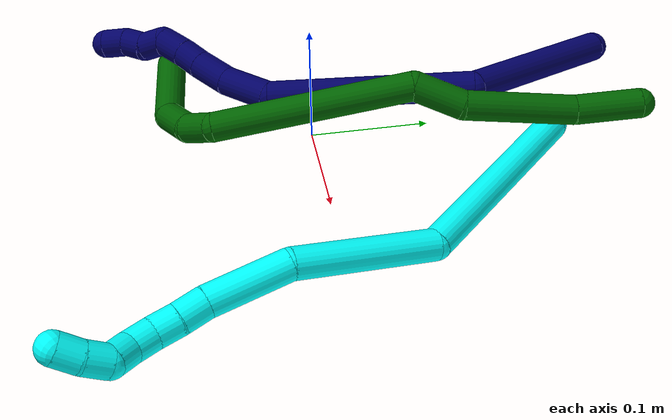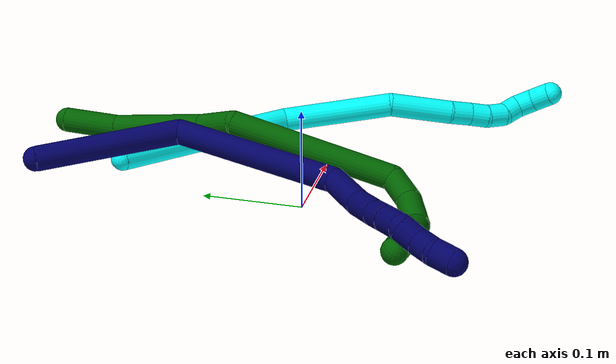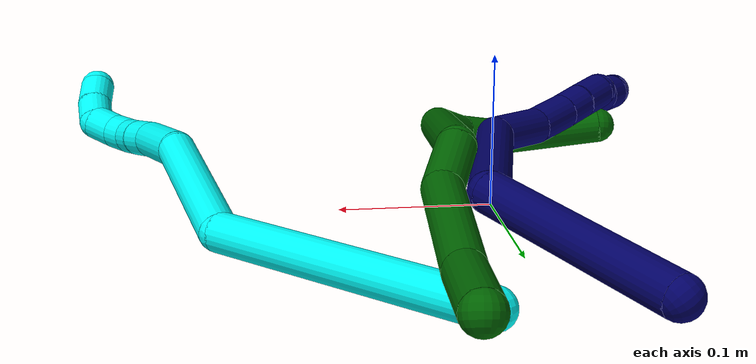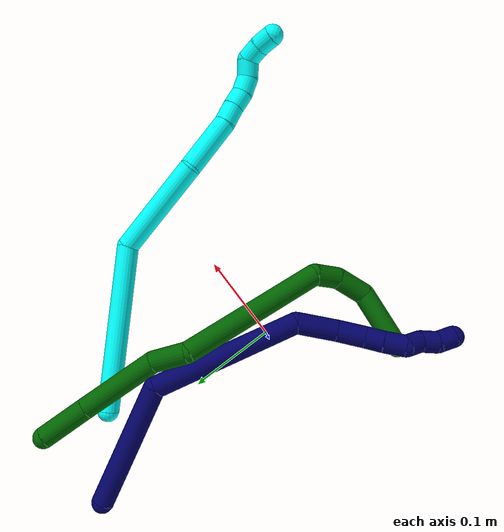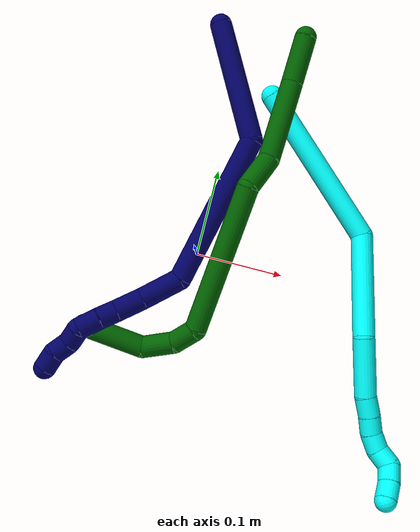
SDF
<sdf version="1.7">
 <world name="default">
  <model name="photoneo_s_sensor">
   <static>1</static>
   <pose>0 0 2 1.57079 1.57079 3.14159</pose>
   <link name="link">
    <inertial><mass>0.1</mass></inertial>
    <sensor name="sensor" type="depth">
     <update_rate>30</update_rate>
     <camera>
      <horizontal_fov>1.22</horizontal_fov>
      <image><width>1920</width><height>1200</height><format>B8G8R8</format></image>
      <clip><near>0.1</near><far>4</far></clip>
      <depth_camera><output>points</output></depth_camera>
     </camera>
     <plugin name="camera_plugin" filename="libgazebo_ros_depth_camera.so">
      <baseline>0.2</baseline>
      <alwaysOn>1</alwaysOn>
      <updateRate>0.0</updateRate>
      <cameraName>camera_ir</cameraName>
      <imageTopicName>/camera/color/image_raw</imageTopicName>
      <cameraInfoTopicName>/camera/color/camera_info</cameraInfoTopicName>
      <depthImageTopicName>/camera/depth/image_raw</depthImageTopicName>
      <depthImageCameraInfoTopicName>/camera/depth/camera_info</depthImageCameraInfoTopicName>
      <pointCloudTopicName>/camera/depth/points</pointCloudTopicName>
      <frameName>fr_optical</frameName>
      <pointCloudCutoff>0.1</pointCloudCutoff>
      <pointCloudCutoffMax>2.0</pointCloudCutoffMax>
      <distortionK1>0</distortionK1>
      <distortionK2>0</distortionK2>
      <distortionK3>0</distortionK3>
      <distortionT1>0</distortionT1>
      <distortionT2>0</distortionT2>
      <CxPrime>0</CxPrime>
      <Cx>0</Cx>
      <Cy>0</Cy>
      <focalLength>0</focalLength>
      <hackBaseline>0</hackBaseline>
     </plugin>
    </sensor>
   </link>
  </model>
  <model name="bin">
   <static>1</static>
   <link name="bottom">
    <collision name="collision-bottom">
     <pose>0 0 -0.01 0 -0 0</pose>
     <geometry><box><size>0.8 0.6 0.02</size></box></geometry>
     <surface>
      <friction><ode><mu>100</mu><mu2>100</mu2></ode></friction>
      <contact><collide_bitmask>65535</collide_bitmask></contact>
     </surface>
    </collision>
   </link>
   <link name="west_wall">
    <collision name="collision-west_wall">
     <pose>-0.41 0 0.1 0 -0 0</pose>
     <geometry><box><size>0.02 0.6 0.2</size></box></geometry>
     <surface>
      <friction><ode><mu>100</mu><mu2>100</mu2></ode></friction>
      <contact><collide_bitmask>65535</collide_bitmask></contact>
     </surface>
    </collision>
   </link>
   <link name="east_wall">
    <collision name="collision-east_wall">
     <pose>0.41 0 0.1 0 -0 0</pose>
     <geometry><box><size>0.02 0.6 0.2</size></box></geometry>
     <surface>
      <friction><ode><mu>100</mu><mu2>100</mu2></ode></friction>
      <contact><collide_bitmask>65535</collide_bitmask></contact>
     </surface>
    </collision>
   </link>
   <link name="south_wall">
    <collision name="collision-south_wall">
     <pose>0 -0.31 0.1 0 -0 0</pose>
     <geometry><box><size>0.8 0.02 0.2</size></box></geometry>
     <surface>
      <friction><ode><mu>100</mu><mu2>100</mu2></ode></friction>
      <contact><collide_bitmask>65535</collide_bitmask></contact>
     </surface>
    </collision>
   </link>
   <link name="north_wall">
    <collision name="collision-north_wall">
     <pose>0 0.31 0.1 0 -0 0</pose>
     <geometry><box><size>0.8 0.02 0.2</size></box></geometry>
     <surface>
      <friction><ode><mu>100</mu><mu2>100</mu2></ode></friction>
      <contact><collide_bitmask>65535</collide_bitmask></contact>
     </surface>
    </collision>
   </link>
  </model>
  <model name="3">
   <static>0</static>
   <link name="3">
    <collision name="collision-cylinder-e_1_1_4">
     <pose>0.050797 -0.078944 0.021488 1.30505 0.555623 0.429165</pose>
     <geometry><cylinder><radius>0.0125</radius><length>0.192606</length></cylinder></geometry>
     <surface>
      <friction><ode><mu>1.16</mu><mu2>1.16</mu2><slip1>0</slip1><slip2>0</slip2></ode></friction>
      <contact><ode><kp>1e+06</kp><kd>1</kd><max_vel>0</max_vel><min_depth>0.001</min_depth></ode></contact>
     </surface>
    </collision>
    <visual name="visual-cylinder-e_1_1_4">
     <pose>0.050797 -0.078944 0.021488 1.30505 0.555623 0.429165</pose>
     <geometry><cylinder><radius>0.0125</radius><length>0.192606</length></cylinder></geometry>
     <material><ambient>0.003922 1 0.996078 1</ambient></material>
    </visual>
    <collision name="collision-cylinder-e_2_4_5">
     <pose>0.123667 -0.208193 0.02252 1.957 0.386064 0.565416</pose>
     <geometry><cylinder><radius>0.0125</radius><length>0.117237</length></cylinder></geometry>
     <surface>
      <friction><ode><mu>1.16</mu><mu2>1.16</mu2><slip1>0</slip1><slip2>0</slip2></ode></friction>
      <contact><ode><kp>1e+06</kp><kd>1</kd><max_vel>0</max_vel><min_depth>0.001</min_depth></ode></contact>
     </surface>
    </collision>
    <visual name="visual-cylinder-e_2_4_5">
     <pose>0.123667 -0.208193 0.02252 1.957 0.386064 0.565416</pose>
     <geometry><cylinder><radius>0.0125</radius><length>0.117237</length></cylinder></geometry>
     <material><ambient>0.003922 1 0.996078 1</ambient></material>
    </visual>
    <collision name="collision-cylinder-e_3_5_6">
     <pose>0.167306 -0.281887 -0.007266 1.9504 0.708206 0.998777</pose>
     <geometry><cylinder><radius>0.0125</radius><length>0.066311</length></cylinder></geometry>
     <surface>
      <friction><ode><mu>1.16</mu><mu2>1.16</mu2><slip1>0</slip1><slip2>0</slip2></ode></friction>
      <contact><ode><kp>1e+06</kp><kd>1</kd><max_vel>0</max_vel><min_depth>0.001</min_depth></ode></contact>
     </surface>
    </collision>
    <visual name="visual-cylinder-e_3_5_6">
     <pose>0.167306 -0.281887 -0.007266 1.9504 0.708206 0.998777</pose>
     <geometry><cylinder><radius>0.0125</radius><length>0.066311</length></cylinder></geometry>
     <material><ambient>0.003922 1 0.996078 1</ambient></material>
    </visual>
    <collision name="collision-cylinder-e_4_6_7">
     <pose>0.196626 -0.313399 -0.017892 1.72878 0.755902 0.871005</pose>
     <geometry><cylinder><radius>0.0125</radius><length>0.022605</length></cylinder></geometry>
     <surface>
      <friction><ode><mu>1.16</mu><mu2>1.16</mu2><slip1>0</slip1><slip2>0</slip2></ode></friction>
      <contact><ode><kp>1e+06</kp><kd>1</kd><max_vel>0</max_vel><min_depth>0.001</min_depth></ode></contact>
     </surface>
    </collision>
    <visual name="visual-cylinder-e_4_6_7">
     <pose>0.196626 -0.313399 -0.017892 1.72878 0.755902 0.871005</pose>
     <geometry><cylinder><radius>0.0125</radius><length>0.022605</length></cylinder></geometry>
     <material><ambient>0.003922 1 0.996078 1</ambient></material>
    </visual>
    <collision name="collision-cylinder-e_5_7_8">
     <pose>0.211247 -0.328614 -0.021206 1.8482 0.749796 0.960928</pose>
     <geometry><cylinder><radius>0.0125</radius><length>0.020156</length></cylinder></geometry>
     <surface>
      <friction><ode><mu>1.16</mu><mu2>1.16</mu2><slip1>0</slip1><slip2>0</slip2></ode></friction>
      <contact><ode><kp>1e+06</kp><kd>1</kd><max_vel>0</max_vel><min_depth>0.001</min_depth></ode></contact>
     </surface>
    </collision>
    <visual name="visual-cylinder-e_5_7_8">
     <pose>0.211247 -0.328614 -0.021206 1.8482 0.749796 0.960928</pose>
     <geometry><cylinder><radius>0.0125</radius><length>0.020156</length></cylinder></geometry>
     <material><ambient>0.003922 1 0.996078 1</ambient></material>
    </visual>
    <collision name="collision-cylinder-e_6_8_9">
     <pose>0.223936 -0.344026 -0.023148 1.56154 0.610524 0.605237</pose>
     <geometry><cylinder><radius>0.0125</radius><length>0.020306</length></cylinder></geometry>
     <surface>
      <friction><ode><mu>1.16</mu><mu2>1.16</mu2><slip1>0</slip1><slip2>0</slip2></ode></friction>
      <contact><ode><kp>1e+06</kp><kd>1</kd><max_vel>0</max_vel><min_depth>0.001</min_depth></ode></contact>
     </surface>
    </collision>
    <visual name="visual-cylinder-e_6_8_9">
     <pose>0.223936 -0.344026 -0.023148 1.56154 0.610524 0.605237</pose>
     <geometry><cylinder><radius>0.0125</radius><length>0.020306</length></cylinder></geometry>
     <material><ambient>0.003922 1 0.996078 1</ambient></material>
    </visual>
    <collision name="collision-cylinder-e_7_9_10">
     <pose>0.23305 -0.361616 -0.020026 1.25348 0.325515 0.236707</pose>
     <geometry><cylinder><radius>0.0125</radius><length>0.020598</length></cylinder></geometry>
     <surface>
      <friction><ode><mu>1.16</mu><mu2>1.16</mu2><slip1>0</slip1><slip2>0</slip2></ode></friction>
      <contact><ode><kp>1e+06</kp><kd>1</kd><max_vel>0</max_vel><min_depth>0.001</min_depth></ode></contact>
     </surface>
    </collision>
    <visual name="visual-cylinder-e_7_9_10">
     <pose>0.23305 -0.361616 -0.020026 1.25348 0.325515 0.236707</pose>
     <geometry><cylinder><radius>0.0125</radius><length>0.020598</length></cylinder></geometry>
     <material><ambient>0.003922 1 0.996078 1</ambient></material>
    </visual>
    <collision name="collision-cylinder-e_8_10_11">
     <pose>0.237053 -0.379955 -0.02116 2.00255 0.070954 0.110748</pose>
     <geometry><cylinder><radius>0.0125</radius><length>0.020019</length></cylinder></geometry>
     <surface>
      <friction><ode><mu>1.16</mu><mu2>1.16</mu2><slip1>0</slip1><slip2>0</slip2></ode></friction>
      <contact><ode><kp>1e+06</kp><kd>1</kd><max_vel>0</max_vel><min_depth>0.001</min_depth></ode></contact>
     </surface>
    </collision>
    <visual name="visual-cylinder-e_8_10_11">
     <pose>0.237053 -0.379955 -0.02116 2.00255 0.070954 0.110748</pose>
     <geometry><cylinder><radius>0.0125</radius><length>0.020019</length></cylinder></geometry>
     <material><ambient>0.003922 1 0.996078 1</ambient></material>
    </visual>
    <collision name="collision-cylinder-e_9_11_2">
     <pose>0.237528 -0.397389 -0.030958 2.16236 -0.023285 -0.043691</pose>
     <geometry><cylinder><radius>0.0125</radius><length>0.020161</length></cylinder></geometry>
     <surface>
      <friction><ode><mu>1.16</mu><mu2>1.16</mu2><slip1>0</slip1><slip2>0</slip2></ode></friction>
      <contact><ode><kp>1e+06</kp><kd>1</kd><max_vel>0</max_vel><min_depth>0.001</min_depth></ode></contact>
     </surface>
    </collision>
    <visual name="visual-cylinder-e_9_11_2">
     <pose>0.237528 -0.397389 -0.030958 2.16236 -0.023285 -0.043691</pose>
     <geometry><cylinder><radius>0.0125</radius><length>0.020161</length></cylinder></geometry>
     <material><ambient>0.003922 1 0.996078 1</ambient></material>
    </visual>
    <collision name="collision-sphere-2">
     <pose>0.237294 -0.405754 -0.036578 0 -0 0</pose>
     <geometry><sphere><radius>0.0125</radius></sphere></geometry>
     <surface>
      <friction><ode><mu>1.16</mu><mu2>1.16</mu2><slip1>0</slip1><slip2>0</slip2></ode></friction>
      <contact><ode><kp>1e+06</kp><kd>1</kd><max_vel>0</max_vel><min_depth>0.001</min_depth></ode></contact>
     </surface>
    </collision>
    <visual name="visual-sphere-2">
     <pose>0.237294 -0.405754 -0.036578 0 -0 0</pose>
     <geometry><sphere><radius>0.0125</radius></sphere></geometry>
     <material><ambient>0.003922 1 0.996078 1</ambient></material>
    </visual>
    <collision name="collision-sphere-11">
     <pose>0.237763 -0.389023 -0.025338 0 -0 0</pose>
     <geometry><sphere><radius>0.0125</radius></sphere></geometry>
     <surface>
      <friction><ode><mu>1.16</mu><mu2>1.16</mu2><slip1>0</slip1><slip2>0</slip2></ode></friction>
      <contact><ode><kp>1e+06</kp><kd>1</kd><max_vel>0</max_vel><min_depth>0.001</min_depth></ode></contact>
     </surface>
    </collision>
    <visual name="visual-sphere-11">
     <pose>0.237763 -0.389023 -0.025338 0 -0 0</pose>
     <geometry><sphere><radius>0.0125</radius></sphere></geometry>
     <material><ambient>0.003922 1 0.996078 1</ambient></material>
    </visual>
    <collision name="collision-sphere-10">
     <pose>0.236344 -0.370887 -0.016982 0 -0 0</pose>
     <geometry><sphere><radius>0.0125</radius></sphere></geometry>
     <surface>
      <friction><ode><mu>1.16</mu><mu2>1.16</mu2><slip1>0</slip1><slip2>0</slip2></ode></friction>
      <contact><ode><kp>1e+06</kp><kd>1</kd><max_vel>0</max_vel><min_depth>0.001</min_depth></ode></contact>
     </surface>
    </collision>
    <visual name="visual-sphere-10">
     <pose>0.236344 -0.370887 -0.016982 0 -0 0</pose>
     <geometry><sphere><radius>0.0125</radius></sphere></geometry>
     <material><ambient>0.003922 1 0.996078 1</ambient></material>
    </visual>
    <collision name="collision-sphere-9">
     <pose>0.229756 -0.352345 -0.023071 0 -0 0</pose>
     <geometry><sphere><radius>0.0125</radius></sphere></geometry>
     <surface>
      <friction><ode><mu>1.16</mu><mu2>1.16</mu2><slip1>0</slip1><slip2>0</slip2></ode></friction>
      <contact><ode><kp>1e+06</kp><kd>1</kd><max_vel>0</max_vel><min_depth>0.001</min_depth></ode></contact>
     </surface>
    </collision>
    <visual name="visual-sphere-9">
     <pose>0.229756 -0.352345 -0.023071 0 -0 0</pose>
     <geometry><sphere><radius>0.0125</radius></sphere></geometry>
     <material><ambient>0.003922 1 0.996078 1</ambient></material>
    </visual>
    <collision name="collision-sphere-4">
     <pose>0.101595 -0.157889 0.042975 0 -0 0</pose>
     <geometry><sphere><radius>0.0125</radius></sphere></geometry>
     <surface>
      <friction><ode><mu>1.16</mu><mu2>1.16</mu2><slip1>0</slip1><slip2>0</slip2></ode></friction>
      <contact><ode><kp>1e+06</kp><kd>1</kd><max_vel>0</max_vel><min_depth>0.001</min_depth></ode></contact>
     </surface>
    </collision>
    <visual name="visual-sphere-4">
     <pose>0.101595 -0.157889 0.042975 0 -0 0</pose>
     <geometry><sphere><radius>0.0125</radius></sphere></geometry>
     <material><ambient>0.003922 1 0.996078 1</ambient></material>
    </visual>
    <collision name="collision-sphere-1">
     <geometry><sphere><radius>0.0125</radius></sphere></geometry>
     <surface>
      <friction><ode><mu>1.16</mu><mu2>1.16</mu2><slip1>0</slip1><slip2>0</slip2></ode></friction>
      <contact><ode><kp>1e+06</kp><kd>1</kd><max_vel>0</max_vel><min_depth>0.001</min_depth></ode></contact>
     </surface>
    </collision>
    <visual name="visual-sphere-1">
     <geometry><sphere><radius>0.0125</radius></sphere></geometry>
     <material><ambient>0.003922 1 0.996078 1</ambient></material>
    </visual>
    <collision name="collision-sphere-8">
     <pose>0.218115 -0.335708 -0.023225 0 -0 0</pose>
     <geometry><sphere><radius>0.0125</radius></sphere></geometry>
     <surface>
      <friction><ode><mu>1.16</mu><mu2>1.16</mu2><slip1>0</slip1><slip2>0</slip2></ode></friction>
      <contact><ode><kp>1e+06</kp><kd>1</kd><max_vel>0</max_vel><min_depth>0.001</min_depth></ode></contact>
     </surface>
    </collision>
    <visual name="visual-sphere-8">
     <pose>0.218115 -0.335708 -0.023225 0 -0 0</pose>
     <geometry><sphere><radius>0.0125</radius></sphere></geometry>
     <material><ambient>0.003922 1 0.996078 1</ambient></material>
    </visual>
    <collision name="collision-sphere-5">
     <pose>0.14574 -0.258498 0.002065 0 -0 0</pose>
     <geometry><sphere><radius>0.0125</radius></sphere></geometry>
     <surface>
      <friction><ode><mu>1.16</mu><mu2>1.16</mu2><slip1>0</slip1><slip2>0</slip2></ode></friction>
      <contact><ode><kp>1e+06</kp><kd>1</kd><max_vel>0</max_vel><min_depth>0.001</min_depth></ode></contact>
     </surface>
    </collision>
    <visual name="visual-sphere-5">
     <pose>0.14574 -0.258498 0.002065 0 -0 0</pose>
     <geometry><sphere><radius>0.0125</radius></sphere></geometry>
     <material><ambient>0.003922 1 0.996078 1</ambient></material>
    </visual>
    <collision name="collision-sphere-6">
     <pose>0.188873 -0.305277 -0.016598 0 -0 0</pose>
     <geometry><sphere><radius>0.0125</radius></sphere></geometry>
     <surface>
      <friction><ode><mu>1.16</mu><mu2>1.16</mu2><slip1>0</slip1><slip2>0</slip2></ode></friction>
      <contact><ode><kp>1e+06</kp><kd>1</kd><max_vel>0</max_vel><min_depth>0.001</min_depth></ode></contact>
     </surface>
    </collision>
    <visual name="visual-sphere-6">
     <pose>0.188873 -0.305277 -0.016598 0 -0 0</pose>
     <geometry><sphere><radius>0.0125</radius></sphere></geometry>
     <material><ambient>0.003922 1 0.996078 1</ambient></material>
    </visual>
    <collision name="collision-sphere-7">
     <pose>0.204379 -0.321521 -0.019186 0 -0 0</pose>
     <geometry><sphere><radius>0.0125</radius></sphere></geometry>
     <surface>
      <friction><ode><mu>1.16</mu><mu2>1.16</mu2><slip1>0</slip1><slip2>0</slip2></ode></friction>
      <contact><ode><kp>1e+06</kp><kd>1</kd><max_vel>0</max_vel><min_depth>0.001</min_depth></ode></contact>
     </surface>
    </collision>
    <visual name="visual-sphere-7">
     <pose>0.204379 -0.321521 -0.019186 0 -0 0</pose>
     <geometry><sphere><radius>0.0125</radius></sphere></geometry>
     <material><ambient>0.003922 1 0.996078 1</ambient></material>
    </visual>
    <inertial>
     <pose>0.125923 -0.204132 0.00707 0 -0 0</pose>
     <mass>0.5</mass>
     <inertia>
      <ixx>0.000913</ixx>
      <ixy>0</ixy>
      <ixz>0</ixz>
      <iyy>0.000533</iyy>
      <iyz>0</iyz>
      <izz>0.000246</izz>
     </inertia>
    </inertial>
   </link>
   <pose>0.039183 0.199806 0.011492 -1.62431 0.991654 -1.03307</pose>
  </model>
  <model name="6">
   <static>0</static>
   <link name="6">
    <collision name="collision-cylinder-e_1_1_4">
     <pose>0.003403 -0.025412 0.011571 1.14352 0.12128 0.078095</pose>
     <geometry><cylinder><radius>0.0125</radius><length>0.056259</length></cylinder></geometry>
     <surface>
      <friction><ode><mu>1.16</mu><mu2>1.16</mu2><slip1>0</slip1><slip2>0</slip2></ode></friction>
      <contact><ode><kp>1e+06</kp><kd>1</kd><max_vel>0</max_vel><min_depth>0.001</min_depth></ode></contact>
     </surface>
    </collision>
    <visual name="visual-cylinder-e_1_1_4">
     <pose>0.003403 -0.025412 0.011571 1.14352 0.12128 0.078095</pose>
     <geometry><cylinder><radius>0.0125</radius><length>0.056259</length></cylinder></geometry>
     <material><ambient>0 0.392157 0.003922 1</ambient></material>
    </visual>
    <collision name="collision-cylinder-e_2_4_5">
     <pose>0.011837 -0.089848 0.049311 0.980064 0.106655 0.056931</pose>
     <geometry><cylinder><radius>0.0125</radius><length>0.094507</length></cylinder></geometry>
     <surface>
      <friction><ode><mu>1.16</mu><mu2>1.16</mu2><slip1>0</slip1><slip2>0</slip2></ode></friction>
      <contact><ode><kp>1e+06</kp><kd>1</kd><max_vel>0</max_vel><min_depth>0.001</min_depth></ode></contact>
     </surface>
    </collision>
    <visual name="visual-cylinder-e_2_4_5">
     <pose>0.011837 -0.089848 0.049311 0.980064 0.106655 0.056931</pose>
     <geometry><cylinder><radius>0.0125</radius><length>0.094507</length></cylinder></geometry>
     <material><ambient>0 0.392157 0.003922 1</ambient></material>
    </visual>
    <collision name="collision-cylinder-e_3_5_6">
     <pose>0.012473 -0.143891 0.090271 0.793117 -0.205476 -0.086292</pose>
     <geometry><cylinder><radius>0.0125</radius><length>0.043068</length></cylinder></geometry>
     <surface>
      <friction><ode><mu>1.16</mu><mu2>1.16</mu2><slip1>0</slip1><slip2>0</slip2></ode></friction>
      <contact><ode><kp>1e+06</kp><kd>1</kd><max_vel>0</max_vel><min_depth>0.001</min_depth></ode></contact>
     </surface>
    </collision>
    <visual name="visual-cylinder-e_3_5_6">
     <pose>0.012473 -0.143891 0.090271 0.793117 -0.205476 -0.086292</pose>
     <geometry><cylinder><radius>0.0125</radius><length>0.043068</length></cylinder></geometry>
     <material><ambient>0 0.392157 0.003922 1</ambient></material>
    </visual>
    <collision name="collision-cylinder-e_4_6_7">
     <pose>0.012872 -0.239995 0.126709 1.30991 0.057049 0.043821</pose>
     <geometry><cylinder><radius>0.0125</radius><length>0.168118</length></cylinder></geometry>
     <surface>
      <friction><ode><mu>1.16</mu><mu2>1.16</mu2><slip1>0</slip1><slip2>0</slip2></ode></friction>
      <contact><ode><kp>1e+06</kp><kd>1</kd><max_vel>0</max_vel><min_depth>0.001</min_depth></ode></contact>
     </surface>
    </collision>
    <visual name="visual-cylinder-e_4_6_7">
     <pose>0.012872 -0.239995 0.126709 1.30991 0.057049 0.043821</pose>
     <geometry><cylinder><radius>0.0125</radius><length>0.168118</length></cylinder></geometry>
     <material><ambient>0 0.392157 0.003922 1</ambient></material>
    </visual>
    <collision name="collision-cylinder-e_5_7_8">
     <pose>0.009664 -0.333785 0.147817 1.6132 -0.561489 -0.584481</pose>
     <geometry><cylinder><radius>0.0125</radius><length>0.030053</length></cylinder></geometry>
     <surface>
      <friction><ode><mu>1.16</mu><mu2>1.16</mu2><slip1>0</slip1><slip2>0</slip2></ode></friction>
      <contact><ode><kp>1e+06</kp><kd>1</kd><max_vel>0</max_vel><min_depth>0.001</min_depth></ode></contact>
     </surface>
    </collision>
    <visual name="visual-cylinder-e_5_7_8">
     <pose>0.009664 -0.333785 0.147817 1.6132 -0.561489 -0.584481</pose>
     <geometry><cylinder><radius>0.0125</radius><length>0.030053</length></cylinder></geometry>
     <material><ambient>0 0.392157 0.003922 1</ambient></material>
    </visual>
    <collision name="collision-cylinder-e_6_8_9">
     <pose>-0.013908 -0.357176 0.147285 1.57015 -0.969496 -0.968965</pose>
     <geometry><cylinder><radius>0.0125</radius><length>0.037768</length></cylinder></geometry>
     <surface>
      <friction><ode><mu>1.16</mu><mu2>1.16</mu2><slip1>0</slip1><slip2>0</slip2></ode></friction>
      <contact><ode><kp>1e+06</kp><kd>1</kd><max_vel>0</max_vel><min_depth>0.001</min_depth></ode></contact>
     </surface>
    </collision>
    <visual name="visual-cylinder-e_6_8_9">
     <pose>-0.013908 -0.357176 0.147285 1.57015 -0.969496 -0.968965</pose>
     <geometry><cylinder><radius>0.0125</radius><length>0.037768</length></cylinder></geometry>
     <material><ambient>0 0.392157 0.003922 1</ambient></material>
    </visual>
    <collision name="collision-cylinder-e_7_9_2">
     <pose>-0.064374 -0.36792 0.151209 0.015481 -1.459 -0.013841</pose>
     <geometry><cylinder><radius>0.0125</radius><length>0.070227</length></cylinder></geometry>
     <surface>
      <friction><ode><mu>1.16</mu><mu2>1.16</mu2><slip1>0</slip1><slip2>0</slip2></ode></friction>
      <contact><ode><kp>1e+06</kp><kd>1</kd><max_vel>0</max_vel><min_depth>0.001</min_depth></ode></contact>
     </surface>
    </collision>
    <visual name="visual-cylinder-e_7_9_2">
     <pose>-0.064374 -0.36792 0.151209 0.015481 -1.459 -0.013841</pose>
     <geometry><cylinder><radius>0.0125</radius><length>0.070227</length></cylinder></geometry>
     <material><ambient>0 0.392157 0.003922 1</ambient></material>
    </visual>
    <collision name="collision-sphere-2">
     <pose>-0.099269 -0.36798 0.155126 0 -0 0</pose>
     <geometry><sphere><radius>0.0125</radius></sphere></geometry>
     <surface>
      <friction><ode><mu>1.16</mu><mu2>1.16</mu2><slip1>0</slip1><slip2>0</slip2></ode></friction>
      <contact><ode><kp>1e+06</kp><kd>1</kd><max_vel>0</max_vel><min_depth>0.001</min_depth></ode></contact>
     </surface>
    </collision>
    <visual name="visual-sphere-2">
     <pose>-0.099269 -0.36798 0.155126 0 -0 0</pose>
     <geometry><sphere><radius>0.0125</radius></sphere></geometry>
     <material><ambient>0 0.392157 0.003922 1</ambient></material>
    </visual>
    <collision name="collision-sphere-9">
     <pose>-0.02948 -0.367859 0.147292 0 -0 0</pose>
     <geometry><sphere><radius>0.0125</radius></sphere></geometry>
     <surface>
      <friction><ode><mu>1.16</mu><mu2>1.16</mu2><slip1>0</slip1><slip2>0</slip2></ode></friction>
      <contact><ode><kp>1e+06</kp><kd>1</kd><max_vel>0</max_vel><min_depth>0.001</min_depth></ode></contact>
     </surface>
    </collision>
    <visual name="visual-sphere-9">
     <pose>-0.02948 -0.367859 0.147292 0 -0 0</pose>
     <geometry><sphere><radius>0.0125</radius></sphere></geometry>
     <material><ambient>0 0.392157 0.003922 1</ambient></material>
    </visual>
    <collision name="collision-sphere-4">
     <pose>0.006806 -0.050825 0.023142 0 -0 0</pose>
     <geometry><sphere><radius>0.0125</radius></sphere></geometry>
     <surface>
      <friction><ode><mu>1.16</mu><mu2>1.16</mu2><slip1>0</slip1><slip2>0</slip2></ode></friction>
      <contact><ode><kp>1e+06</kp><kd>1</kd><max_vel>0</max_vel><min_depth>0.001</min_depth></ode></contact>
     </surface>
    </collision>
    <visual name="visual-sphere-4">
     <pose>0.006806 -0.050825 0.023142 0 -0 0</pose>
     <geometry><sphere><radius>0.0125</radius></sphere></geometry>
     <material><ambient>0 0.392157 0.003922 1</ambient></material>
    </visual>
    <collision name="collision-sphere-1">
     <geometry><sphere><radius>0.0125</radius></sphere></geometry>
     <surface>
      <friction><ode><mu>1.16</mu><mu2>1.16</mu2><slip1>0</slip1><slip2>0</slip2></ode></friction>
      <contact><ode><kp>1e+06</kp><kd>1</kd><max_vel>0</max_vel><min_depth>0.001</min_depth></ode></contact>
     </surface>
    </collision>
    <visual name="visual-sphere-1">
     <geometry><sphere><radius>0.0125</radius></sphere></geometry>
     <material><ambient>0 0.392157 0.003922 1</ambient></material>
    </visual>
    <collision name="collision-sphere-8">
     <pose>0.001664 -0.346493 0.147278 0 -0 0</pose>
     <geometry><sphere><radius>0.0125</radius></sphere></geometry>
     <surface>
      <friction><ode><mu>1.16</mu><mu2>1.16</mu2><slip1>0</slip1><slip2>0</slip2></ode></friction>
      <contact><ode><kp>1e+06</kp><kd>1</kd><max_vel>0</max_vel><min_depth>0.001</min_depth></ode></contact>
     </surface>
    </collision>
    <visual name="visual-sphere-8">
     <pose>0.001664 -0.346493 0.147278 0 -0 0</pose>
     <geometry><sphere><radius>0.0125</radius></sphere></geometry>
     <material><ambient>0 0.392157 0.003922 1</ambient></material>
    </visual>
    <collision name="collision-sphere-5">
     <pose>0.016867 -0.12887 0.07548 0 -0 0</pose>
     <geometry><sphere><radius>0.0125</radius></sphere></geometry>
     <surface>
      <friction><ode><mu>1.16</mu><mu2>1.16</mu2><slip1>0</slip1><slip2>0</slip2></ode></friction>
      <contact><ode><kp>1e+06</kp><kd>1</kd><max_vel>0</max_vel><min_depth>0.001</min_depth></ode></contact>
     </surface>
    </collision>
    <visual name="visual-sphere-5">
     <pose>0.016867 -0.12887 0.07548 0 -0 0</pose>
     <geometry><sphere><radius>0.0125</radius></sphere></geometry>
     <material><ambient>0 0.392157 0.003922 1</ambient></material>
    </visual>
    <collision name="collision-sphere-6">
     <pose>0.00808 -0.158912 0.105062 0 -0 0</pose>
     <geometry><sphere><radius>0.0125</radius></sphere></geometry>
     <surface>
      <friction><ode><mu>1.16</mu><mu2>1.16</mu2><slip1>0</slip1><slip2>0</slip2></ode></friction>
      <contact><ode><kp>1e+06</kp><kd>1</kd><max_vel>0</max_vel><min_depth>0.001</min_depth></ode></contact>
     </surface>
    </collision>
    <visual name="visual-sphere-6">
     <pose>0.00808 -0.158912 0.105062 0 -0 0</pose>
     <geometry><sphere><radius>0.0125</radius></sphere></geometry>
     <material><ambient>0 0.392157 0.003922 1</ambient></material>
    </visual>
    <collision name="collision-sphere-7">
     <pose>0.017665 -0.321077 0.148356 0 -0 0</pose>
     <geometry><sphere><radius>0.0125</radius></sphere></geometry>
     <surface>
      <friction><ode><mu>1.16</mu><mu2>1.16</mu2><slip1>0</slip1><slip2>0</slip2></ode></friction>
      <contact><ode><kp>1e+06</kp><kd>1</kd><max_vel>0</max_vel><min_depth>0.001</min_depth></ode></contact>
     </surface>
    </collision>
    <visual name="visual-sphere-7">
     <pose>0.017665 -0.321077 0.148356 0 -0 0</pose>
     <geometry><sphere><radius>0.0125</radius></sphere></geometry>
     <material><ambient>0 0.392157 0.003922 1</ambient></material>
    </visual>
    <inertial>
     <pose>-0.001489 -0.211649 0.10225 0 -0 0</pose>
     <mass>0.5</mass>
     <inertia>
      <ixx>0.000518</ixx>
      <ixy>0</ixy>
      <ixz>0</ixz>
      <iyy>0.000185</iyy>
      <iyz>0</iyz>
      <izz>0.000496</izz>
     </inertia>
    </inertial>
   </link>
   <pose>0.059634 0.267495 0.039012 0.450877 0.031273 -0.158706</pose>
  </model>
  <model name="7">
   <static>0</static>
   <link name="7">
    <collision name="collision-cylinder-e_1_1_4">
     <pose>0.039368 -0.057898 -0.012283 1.77985 0.586954 0.714108</pose>
     <geometry><cylinder><radius>0.0125</radius><length>0.142167</length></cylinder></geometry>
     <surface>
      <friction><ode><mu>1.16</mu><mu2>1.16</mu2><slip1>0</slip1><slip2>0</slip2></ode></friction>
      <contact><ode><kp>1e+06</kp><kd>1</kd><max_vel>0</max_vel><min_depth>0.001</min_depth></ode></contact>
     </surface>
    </collision>
    <visual name="visual-cylinder-e_1_1_4">
     <pose>0.039368 -0.057898 -0.012283 1.77985 0.586954 0.714108</pose>
     <geometry><cylinder><radius>0.0125</radius><length>0.142167</length></cylinder></geometry>
     <material><ambient>0.003922 0 0.403922 1</ambient></material>
    </visual>
    <collision name="collision-cylinder-e_2_4_5">
     <pose>0.081486 -0.197735 0.002521 1.25152 0.03185 0.023017</pose>
     <geometry><cylinder><radius>0.0125</radius><length>0.172689</length></cylinder></geometry>
     <surface>
      <friction><ode><mu>1.16</mu><mu2>1.16</mu2><slip1>0</slip1><slip2>0</slip2></ode></friction>
      <contact><ode><kp>1e+06</kp><kd>1</kd><max_vel>0</max_vel><min_depth>0.001</min_depth></ode></contact>
     </surface>
    </collision>
    <visual name="visual-cylinder-e_2_4_5">
     <pose>0.081486 -0.197735 0.002521 1.25152 0.03185 0.023017</pose>
     <geometry><cylinder><radius>0.0125</radius><length>0.172689</length></cylinder></geometry>
     <material><ambient>0.003922 0 0.403922 1</ambient></material>
    </visual>
    <collision name="collision-cylinder-e_3_5_6">
     <pose>0.076672 -0.294867 0.046044 0.746146 -0.325876 -0.128512</pose>
     <geometry><cylinder><radius>0.0125</radius><length>0.04725</length></cylinder></geometry>
     <surface>
      <friction><ode><mu>1.16</mu><mu2>1.16</mu2><slip1>0</slip1><slip2>0</slip2></ode></friction>
      <contact><ode><kp>1e+06</kp><kd>1</kd><max_vel>0</max_vel><min_depth>0.001</min_depth></ode></contact>
     </surface>
    </collision>
    <visual name="visual-cylinder-e_3_5_6">
     <pose>0.076672 -0.294867 0.046044 0.746146 -0.325876 -0.128512</pose>
     <geometry><cylinder><radius>0.0125</radius><length>0.04725</length></cylinder></geometry>
     <material><ambient>0.003922 0 0.403922 1</ambient></material>
    </visual>
    <collision name="collision-cylinder-e_4_6_7">
     <pose>0.066231 -0.319124 0.075612 0.604112 -0.178423 -0.055728</pose>
     <geometry><cylinder><radius>0.0125</radius><length>0.032427</length></cylinder></geometry>
     <surface>
      <friction><ode><mu>1.16</mu><mu2>1.16</mu2><slip1>0</slip1><slip2>0</slip2></ode></friction>
      <contact><ode><kp>1e+06</kp><kd>1</kd><max_vel>0</max_vel><min_depth>0.001</min_depth></ode></contact>
     </surface>
    </collision>
    <visual name="visual-cylinder-e_4_6_7">
     <pose>0.066231 -0.319124 0.075612 0.604112 -0.178423 -0.055728</pose>
     <geometry><cylinder><radius>0.0125</radius><length>0.032427</length></cylinder></geometry>
     <material><ambient>0.003922 0 0.403922 1</ambient></material>
    </visual>
    <collision name="collision-cylinder-e_5_7_8">
     <pose>0.061895 -0.333555 0.097438 0.553149 -0.141842 -0.040324</pose>
     <geometry><cylinder><radius>0.0125</radius><length>0.020643</length></cylinder></geometry>
     <surface>
      <friction><ode><mu>1.16</mu><mu2>1.16</mu2><slip1>0</slip1><slip2>0</slip2></ode></friction>
      <contact><ode><kp>1e+06</kp><kd>1</kd><max_vel>0</max_vel><min_depth>0.001</min_depth></ode></contact>
     </surface>
    </collision>
    <visual name="visual-cylinder-e_5_7_8">
     <pose>0.061895 -0.333555 0.097438 0.553149 -0.141842 -0.040324</pose>
     <geometry><cylinder><radius>0.0125</radius><length>0.020643</length></cylinder></geometry>
     <material><ambient>0.003922 0 0.403922 1</ambient></material>
    </visual>
    <collision name="collision-cylinder-e_6_8_9">
     <pose>0.058522 -0.346138 0.116013 0.630645 -0.155121 -0.050692</pose>
     <geometry><cylinder><radius>0.0125</radius><length>0.024768</length></cylinder></geometry>
     <surface>
      <friction><ode><mu>1.16</mu><mu2>1.16</mu2><slip1>0</slip1><slip2>0</slip2></ode></friction>
      <contact><ode><kp>1e+06</kp><kd>1</kd><max_vel>0</max_vel><min_depth>0.001</min_depth></ode></contact>
     </surface>
    </collision>
    <visual name="visual-cylinder-e_6_8_9">
     <pose>0.058522 -0.346138 0.116013 0.630645 -0.155121 -0.050692</pose>
     <geometry><cylinder><radius>0.0125</radius><length>0.024768</length></cylinder></geometry>
     <material><ambient>0.003922 0 0.403922 1</ambient></material>
    </visual>
    <collision name="collision-cylinder-e_7_9_10">
     <pose>0.053407 -0.362577 0.128074 1.33885 -0.325776 -0.258644</pose>
     <geometry><cylinder><radius>0.0125</radius><length>0.020008</length></cylinder></geometry>
     <surface>
      <friction><ode><mu>1.16</mu><mu2>1.16</mu2><slip1>0</slip1><slip2>0</slip2></ode></friction>
      <contact><ode><kp>1e+06</kp><kd>1</kd><max_vel>0</max_vel><min_depth>0.001</min_depth></ode></contact>
     </surface>
    </collision>
    <visual name="visual-cylinder-e_7_9_10">
     <pose>0.053407 -0.362577 0.128074 1.33885 -0.325776 -0.258644</pose>
     <geometry><cylinder><radius>0.0125</radius><length>0.020008</length></cylinder></geometry>
     <material><ambient>0.003922 0 0.403922 1</ambient></material>
    </visual>
    <collision name="collision-cylinder-e_8_10_11">
     <pose>0.047936 -0.379112 0.136693 0.848624 -0.228846 -0.103742</pose>
     <geometry><cylinder><radius>0.0125</radius><length>0.020007</length></cylinder></geometry>
     <surface>
      <friction><ode><mu>1.16</mu><mu2>1.16</mu2><slip1>0</slip1><slip2>0</slip2></ode></friction>
      <contact><ode><kp>1e+06</kp><kd>1</kd><max_vel>0</max_vel><min_depth>0.001</min_depth></ode></contact>
     </surface>
    </collision>
    <visual name="visual-cylinder-e_8_10_11">
     <pose>0.047936 -0.379112 0.136693 0.848624 -0.228846 -0.103742</pose>
     <geometry><cylinder><radius>0.0125</radius><length>0.020007</length></cylinder></geometry>
     <material><ambient>0.003922 0 0.403922 1</ambient></material>
    </visual>
    <collision name="collision-cylinder-e_9_11_2">
     <pose>0.044455 -0.395776 0.146516 1.22371 -0.12126 -0.085139</pose>
     <geometry><cylinder><radius>0.0125</radius><length>0.020041</length></cylinder></geometry>
     <surface>
      <friction><ode><mu>1.16</mu><mu2>1.16</mu2><slip1>0</slip1><slip2>0</slip2></ode></friction>
      <contact><ode><kp>1e+06</kp><kd>1</kd><max_vel>0</max_vel><min_depth>0.001</min_depth></ode></contact>
     </surface>
    </collision>
    <visual name="visual-cylinder-e_9_11_2">
     <pose>0.044455 -0.395776 0.146516 1.22371 -0.12126 -0.085139</pose>
     <geometry><cylinder><radius>0.0125</radius><length>0.020041</length></cylinder></geometry>
     <material><ambient>0.003922 0 0.403922 1</ambient></material>
    </visual>
    <collision name="collision-sphere-2">
     <pose>0.043242 -0.40513 0.1499 0 -0 0</pose>
     <geometry><sphere><radius>0.0125</radius></sphere></geometry>
     <surface>
      <friction><ode><mu>1.16</mu><mu2>1.16</mu2><slip1>0</slip1><slip2>0</slip2></ode></friction>
      <contact><ode><kp>1e+06</kp><kd>1</kd><max_vel>0</max_vel><min_depth>0.001</min_depth></ode></contact>
     </surface>
    </collision>
    <visual name="visual-sphere-2">
     <pose>0.043242 -0.40513 0.1499 0 -0 0</pose>
     <geometry><sphere><radius>0.0125</radius></sphere></geometry>
     <material><ambient>0.003922 0 0.403922 1</ambient></material>
    </visual>
    <collision name="collision-sphere-11">
     <pose>0.045667 -0.386422 0.143133 0 -0 0</pose>
     <geometry><sphere><radius>0.0125</radius></sphere></geometry>
     <surface>
      <friction><ode><mu>1.16</mu><mu2>1.16</mu2><slip1>0</slip1><slip2>0</slip2></ode></friction>
      <contact><ode><kp>1e+06</kp><kd>1</kd><max_vel>0</max_vel><min_depth>0.001</min_depth></ode></contact>
     </surface>
    </collision>
    <visual name="visual-sphere-11">
     <pose>0.045667 -0.386422 0.143133 0 -0 0</pose>
     <geometry><sphere><radius>0.0125</radius></sphere></geometry>
     <material><ambient>0.003922 0 0.403922 1</ambient></material>
    </visual>
    <collision name="collision-sphere-10">
     <pose>0.050205 -0.371801 0.130253 0 -0 0</pose>
     <geometry><sphere><radius>0.0125</radius></sphere></geometry>
     <surface>
      <friction><ode><mu>1.16</mu><mu2>1.16</mu2><slip1>0</slip1><slip2>0</slip2></ode></friction>
      <contact><ode><kp>1e+06</kp><kd>1</kd><max_vel>0</max_vel><min_depth>0.001</min_depth></ode></contact>
     </surface>
    </collision>
    <visual name="visual-sphere-10">
     <pose>0.050205 -0.371801 0.130253 0 -0 0</pose>
     <geometry><sphere><radius>0.0125</radius></sphere></geometry>
     <material><ambient>0.003922 0 0.403922 1</ambient></material>
    </visual>
    <collision name="collision-sphere-9">
     <pose>0.056609 -0.353353 0.125895 0 -0 0</pose>
     <geometry><sphere><radius>0.0125</radius></sphere></geometry>
     <surface>
      <friction><ode><mu>1.16</mu><mu2>1.16</mu2><slip1>0</slip1><slip2>0</slip2></ode></friction>
      <contact><ode><kp>1e+06</kp><kd>1</kd><max_vel>0</max_vel><min_depth>0.001</min_depth></ode></contact>
     </surface>
    </collision>
    <visual name="visual-sphere-9">
     <pose>0.056609 -0.353353 0.125895 0 -0 0</pose>
     <geometry><sphere><radius>0.0125</radius></sphere></geometry>
     <material><ambient>0.003922 0 0.403922 1</ambient></material>
    </visual>
    <collision name="collision-sphere-4">
     <pose>0.078736 -0.115796 -0.024567 0 -0 0</pose>
     <geometry><sphere><radius>0.0125</radius></sphere></geometry>
     <surface>
      <friction><ode><mu>1.16</mu><mu2>1.16</mu2><slip1>0</slip1><slip2>0</slip2></ode></friction>
      <contact><ode><kp>1e+06</kp><kd>1</kd><max_vel>0</max_vel><min_depth>0.001</min_depth></ode></contact>
     </surface>
    </collision>
    <visual name="visual-sphere-4">
     <pose>0.078736 -0.115796 -0.024567 0 -0 0</pose>
     <geometry><sphere><radius>0.0125</radius></sphere></geometry>
     <material><ambient>0.003922 0 0.403922 1</ambient></material>
    </visual>
    <collision name="collision-sphere-1">
     <geometry><sphere><radius>0.0125</radius></sphere></geometry>
     <surface>
      <friction><ode><mu>1.16</mu><mu2>1.16</mu2><slip1>0</slip1><slip2>0</slip2></ode></friction>
      <contact><ode><kp>1e+06</kp><kd>1</kd><max_vel>0</max_vel><min_depth>0.001</min_depth></ode></contact>
     </surface>
    </collision>
    <visual name="visual-sphere-1">
     <geometry><sphere><radius>0.0125</radius></sphere></geometry>
     <material><ambient>0.003922 0 0.403922 1</ambient></material>
    </visual>
    <collision name="collision-sphere-8">
     <pose>0.060435 -0.338923 0.106132 0 -0 0</pose>
     <geometry><sphere><radius>0.0125</radius></sphere></geometry>
     <surface>
      <friction><ode><mu>1.16</mu><mu2>1.16</mu2><slip1>0</slip1><slip2>0</slip2></ode></friction>
      <contact><ode><kp>1e+06</kp><kd>1</kd><max_vel>0</max_vel><min_depth>0.001</min_depth></ode></contact>
     </surface>
    </collision>
    <visual name="visual-sphere-8">
     <pose>0.060435 -0.338923 0.106132 0 -0 0</pose>
     <geometry><sphere><radius>0.0125</radius></sphere></geometry>
     <material><ambient>0.003922 0 0.403922 1</ambient></material>
    </visual>
    <collision name="collision-sphere-5">
     <pose>0.084235 -0.279674 0.029609 0 -0 0</pose>
     <geometry><sphere><radius>0.0125</radius></sphere></geometry>
     <surface>
      <friction><ode><mu>1.16</mu><mu2>1.16</mu2><slip1>0</slip1><slip2>0</slip2></ode></friction>
      <contact><ode><kp>1e+06</kp><kd>1</kd><max_vel>0</max_vel><min_depth>0.001</min_depth></ode></contact>
     </surface>
    </collision>
    <visual name="visual-sphere-5">
     <pose>0.084235 -0.279674 0.029609 0 -0 0</pose>
     <geometry><sphere><radius>0.0125</radius></sphere></geometry>
     <material><ambient>0.003922 0 0.403922 1</ambient></material>
    </visual>
    <collision name="collision-sphere-6">
     <pose>0.069109 -0.31006 0.06248 0 -0 0</pose>
     <geometry><sphere><radius>0.0125</radius></sphere></geometry>
     <surface>
      <friction><ode><mu>1.16</mu><mu2>1.16</mu2><slip1>0</slip1><slip2>0</slip2></ode></friction>
      <contact><ode><kp>1e+06</kp><kd>1</kd><max_vel>0</max_vel><min_depth>0.001</min_depth></ode></contact>
     </surface>
    </collision>
    <visual name="visual-sphere-6">
     <pose>0.069109 -0.31006 0.06248 0 -0 0</pose>
     <geometry><sphere><radius>0.0125</radius></sphere></geometry>
     <material><ambient>0.003922 0 0.403922 1</ambient></material>
    </visual>
    <collision name="collision-sphere-7">
     <pose>0.063354 -0.328187 0.088744 0 -0 0</pose>
     <geometry><sphere><radius>0.0125</radius></sphere></geometry>
     <surface>
      <friction><ode><mu>1.16</mu><mu2>1.16</mu2><slip1>0</slip1><slip2>0</slip2></ode></friction>
      <contact><ode><kp>1e+06</kp><kd>1</kd><max_vel>0</max_vel><min_depth>0.001</min_depth></ode></contact>
     </surface>
    </collision>
    <visual name="visual-sphere-7">
     <pose>0.063354 -0.328187 0.088744 0 -0 0</pose>
     <geometry><sphere><radius>0.0125</radius></sphere></geometry>
     <material><ambient>0.003922 0 0.403922 1</ambient></material>
    </visual>
    <inertial>
     <pose>0.062169 -0.209776 0.03287 0 -0 0</pose>
     <mass>0.5</mass>
     <inertia>
      <ixx>0.000756</ixx>
      <ixy>0</ixy>
      <ixz>0</ixz>
      <iyy>0.000312</iyy>
      <iyz>0</iyz>
      <izz>0.000496</izz>
     </inertia>
    </inertial>
   </link>
   <pose>-0.037135 0.258031 0.038426 0.501828 -0.905251 -0.392006</pose>
  </model>
 </world>
</sdf>
